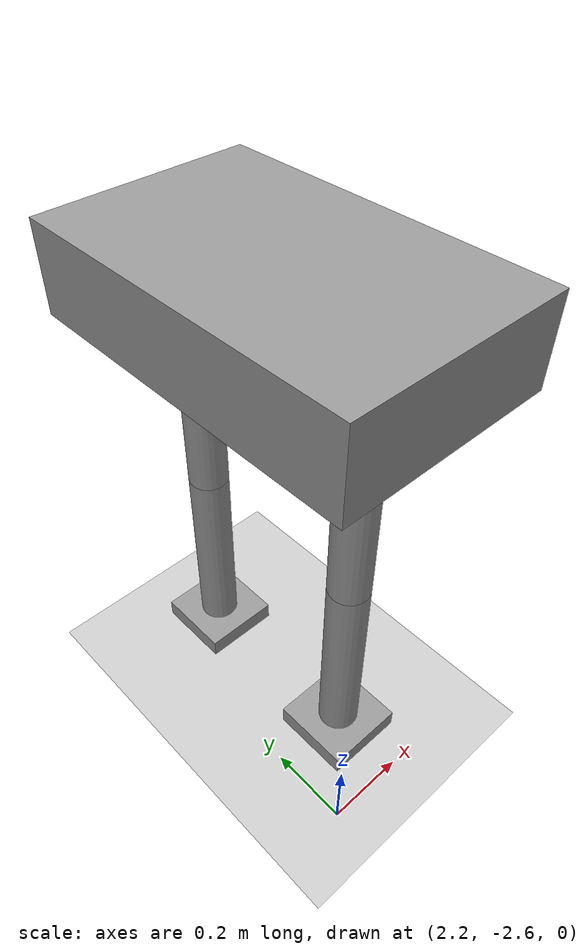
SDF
<sdf version="1.6">
 <world name="default">
  <model name="ground_plane">
   <static>1</static>
   <link name="link">
    <collision name="collision">
     <geometry><plane><normal>0 0 1</normal><size>100 100</size></plane></geometry>
     <surface><friction><ode><mu>100</mu><mu2>50</mu2></ode></friction></surface>
    </collision>
    <visual name="visual">
     <cast_shadows>0</cast_shadows>
     <geometry><plane><normal>0 0 1</normal><size>100 100</size></plane></geometry>
     <material>
      <script><uri>file://media/materials/scripts/gazebo.material</uri><name>Gazebo/Grey</name></script>
     </material>
    </visual>
   </link>
  </model>
  <model name="HumanoidRobot_0">
   <link name="link_0_clone">
    <pose>-0.198443 -0.127142 -0.1375 0 -0 0</pose>
    <inertial>
     <mass>1</mass>
     <inertia>
      <ixx>0.166667</ixx>
      <ixy>0</ixy>
      <ixz>0</ixz>
      <iyy>0.166667</iyy>
      <iyz>0</iyz>
      <izz>0.166667</izz>
     </inertia>
    </inertial>
    <visual name="visual">
     <geometry><box><size>0.2 0.2 0.05</size></box></geometry>
     <material>
      <lighting>1</lighting>
      <script><uri>file://media/materials/scripts/gazebo.material</uri><name>Gazebo/Grey</name></script>
      <shader type="pixel"><normal_map>__default__</normal_map></shader>
      <ambient>0.3 0.3 0.3 1</ambient>
      <diffuse>0.7 0.7 0.7 1</diffuse>
      <specular>0.01 0.01 0.01 1</specular>
      <emissive>0 0 0 1</emissive>
     </material>
    </visual>
    <collision name="collision">
     <geometry><box><size>0.2 0.2 0.05</size></box></geometry>
     <surface>
      <friction>
       <ode><mu>1</mu><mu2>1</mu2><fdir1>0 0 0</fdir1><slip1>0</slip1><slip2>0</slip2></ode>
       <torsional>
        <coefficient>1</coefficient>
        <patch_radius>0</patch_radius>
        <surface_radius>0</surface_radius>
        <use_patch_radius>1</use_patch_radius>
        <ode><slip>0</slip></ode>
       </torsional>
      </friction>
      <bounce><restitution_coefficient>0</restitution_coefficient><threshold>1e+06</threshold></bounce>
      <contact>
       <collide_without_contact>0</collide_without_contact>
       <collide_without_contact_bitmask>1</collide_without_contact_bitmask>
       <collide_bitmask>1</collide_bitmask>
       <ode>
        <soft_cfm>0</soft_cfm>
        <soft_erp>0.2</soft_erp>
        <kp>1e+13</kp>
        <kd>1</kd>
        <max_vel>0.01</max_vel>
        <min_depth>0</min_depth>
       </ode>
       <bullet>
        <split_impulse>1</split_impulse>
        <split_impulse_penetration_threshold>-0.01</split_impulse_penetration_threshold>
        <soft_cfm>0</soft_cfm>
        <soft_erp>0.2</soft_erp>
        <kp>1e+13</kp>
        <kd>1</kd>
       </bullet>
      </contact>
     </surface>
    </collision>
   </link>
   <link name="link_0_clone_clone">
    <pose>-0.198527 0.351681 -0.137499 0 -0 0</pose>
    <inertial>
     <mass>1</mass>
     <inertia>
      <ixx>0.166667</ixx>
      <ixy>0</ixy>
      <ixz>0</ixz>
      <iyy>0.166667</iyy>
      <iyz>0</iyz>
      <izz>0.166667</izz>
     </inertia>
    </inertial>
    <visual name="visual">
     <geometry><box><size>0.2 0.2 0.05</size></box></geometry>
     <material>
      <lighting>1</lighting>
      <script><uri>file://media/materials/scripts/gazebo.material</uri><name>Gazebo/Grey</name></script>
      <shader type="pixel"><normal_map>__default__</normal_map></shader>
      <ambient>0.3 0.3 0.3 1</ambient>
      <diffuse>0.7 0.7 0.7 1</diffuse>
      <specular>0.01 0.01 0.01 1</specular>
      <emissive>0 0 0 1</emissive>
     </material>
    </visual>
    <collision name="collision">
     <geometry><box><size>0.2 0.2 0.05</size></box></geometry>
     <surface>
      <friction>
       <ode><mu>1</mu><mu2>1</mu2><fdir1>0 0 0</fdir1><slip1>0</slip1><slip2>0</slip2></ode>
       <torsional>
        <coefficient>1</coefficient>
        <patch_radius>0</patch_radius>
        <surface_radius>0</surface_radius>
        <use_patch_radius>1</use_patch_radius>
        <ode><slip>0</slip></ode>
       </torsional>
      </friction>
      <bounce><restitution_coefficient>0</restitution_coefficient><threshold>1e+06</threshold></bounce>
      <contact>
       <collide_without_contact>0</collide_without_contact>
       <collide_without_contact_bitmask>1</collide_without_contact_bitmask>
       <collide_bitmask>1</collide_bitmask>
       <ode>
        <soft_cfm>0</soft_cfm>
        <soft_erp>0.2</soft_erp>
        <kp>1e+13</kp>
        <kd>1</kd>
        <max_vel>0.01</max_vel>
        <min_depth>0</min_depth>
       </ode>
       <bullet>
        <split_impulse>1</split_impulse>
        <split_impulse_penetration_threshold>-0.01</split_impulse_penetration_threshold>
        <soft_cfm>0</soft_cfm>
        <soft_erp>0.2</soft_erp>
        <kp>1e+13</kp>
        <kd>1</kd>
       </bullet>
      </contact>
     </surface>
    </collision>
   </link>
   <link name="link_1_clone">
    <pose>-0.19848 0.086402 0.987501 0 2e-06 0.000352</pose>
    <inertial>
     <mass>1</mass>
     <inertia>
      <ixx>0.166667</ixx>
      <ixy>0</ixy>
      <ixz>0</ixz>
      <iyy>0.166667</iyy>
      <iyz>0</iyz>
      <izz>0.166667</izz>
     </inertia>
    </inertial>
    <visual name="visual">
     <geometry><box><size>0.5 0.8 0.2</size></box></geometry>
     <material>
      <lighting>1</lighting>
      <script><uri>file://media/materials/scripts/gazebo.material</uri><name>Gazebo/Grey</name></script>
      <shader type="pixel"><normal_map>__default__</normal_map></shader>
      <ambient>0.3 0.3 0.3 1</ambient>
      <diffuse>0.7 0.7 0.7 1</diffuse>
      <specular>0.01 0.01 0.01 1</specular>
      <emissive>0 0 0 1</emissive>
     </material>
    </visual>
    <collision name="collision">
     <geometry><box><size>0.5 0.8 0.2</size></box></geometry>
     <surface>
      <friction>
       <ode><mu>1</mu><mu2>1</mu2><fdir1>0 0 0</fdir1><slip1>0</slip1><slip2>0</slip2></ode>
       <torsional>
        <coefficient>1</coefficient>
        <patch_radius>0</patch_radius>
        <surface_radius>0</surface_radius>
        <use_patch_radius>1</use_patch_radius>
        <ode><slip>0</slip></ode>
       </torsional>
      </friction>
      <bounce><restitution_coefficient>0</restitution_coefficient><threshold>1e+06</threshold></bounce>
      <contact>
       <collide_without_contact>0</collide_without_contact>
       <collide_without_contact_bitmask>1</collide_without_contact_bitmask>
       <collide_bitmask>1</collide_bitmask>
       <ode>
        <soft_cfm>0</soft_cfm>
        <soft_erp>0.2</soft_erp>
        <kp>1e+13</kp>
        <kd>1</kd>
        <max_vel>0.01</max_vel>
        <min_depth>0</min_depth>
       </ode>
       <bullet>
        <split_impulse>1</split_impulse>
        <split_impulse_penetration_threshold>-0.01</split_impulse_penetration_threshold>
        <soft_cfm>0</soft_cfm>
        <soft_erp>0.2</soft_erp>
        <kp>1e+13</kp>
        <kd>1</kd>
       </bullet>
      </contact>
     </surface>
    </collision>
   </link>
   <link name="link_2_clone_clone">
    <pose>-0.198527 0.351681 0.137501 0 -0 0</pose>
    <inertial>
     <mass>1</mass>
     <inertia><ixx>0.145833</ixx><ixy>0</ixy><ixz>0</ixz><iyy>0.145833</iyy><iyz>0</iyz><izz>0.125</izz></inertia>
    </inertial>
    <visual name="visual">
     <geometry><cylinder><radius>0.05</radius><length>0.5</length></cylinder></geometry>
     <material>
      <lighting>1</lighting>
      <script><uri>file://media/materials/scripts/gazebo.material</uri><name>Gazebo/Grey</name></script>
      <shader type="pixel"><normal_map>__default__</normal_map></shader>
      <ambient>0.3 0.3 0.3 1</ambient>
      <diffuse>0.7 0.7 0.7 1</diffuse>
      <specular>0.01 0.01 0.01 1</specular>
      <emissive>0 0 0 1</emissive>
     </material>
    </visual>
    <collision name="collision">
     <geometry><cylinder><radius>0.05</radius><length>0.5</length></cylinder></geometry>
     <surface>
      <friction>
       <ode><mu>1</mu><mu2>1</mu2><fdir1>0 0 0</fdir1><slip1>0</slip1><slip2>0</slip2></ode>
       <torsional>
        <coefficient>1</coefficient>
        <patch_radius>0</patch_radius>
        <surface_radius>0</surface_radius>
        <use_patch_radius>1</use_patch_radius>
        <ode><slip>0</slip></ode>
       </torsional>
      </friction>
      <bounce><restitution_coefficient>0</restitution_coefficient><threshold>1e+06</threshold></bounce>
      <contact>
       <collide_without_contact>0</collide_without_contact>
       <collide_without_contact_bitmask>1</collide_without_contact_bitmask>
       <collide_bitmask>1</collide_bitmask>
       <ode>
        <soft_cfm>0</soft_cfm>
        <soft_erp>0.2</soft_erp>
        <kp>1e+13</kp>
        <kd>1</kd>
        <max_vel>0.01</max_vel>
        <min_depth>0</min_depth>
       </ode>
       <bullet>
        <split_impulse>1</split_impulse>
        <split_impulse_penetration_threshold>-0.01</split_impulse_penetration_threshold>
        <soft_cfm>0</soft_cfm>
        <soft_erp>0.2</soft_erp>
        <kp>1e+13</kp>
        <kd>1</kd>
       </bullet>
      </contact>
     </surface>
    </collision>
   </link>
   <link name="link_2_clone_clone_0">
    <pose>-0.198442 -0.128015 0.637501 -0 1e-06 0.000176</pose>
    <inertial>
     <mass>1</mass>
     <inertia><ixx>0.145833</ixx><ixy>0</ixy><ixz>0</ixz><iyy>0.145833</iyy><iyz>0</iyz><izz>0.125</izz></inertia>
    </inertial>
    <visual name="visual">
     <geometry><cylinder><radius>0.05</radius><length>0.5</length></cylinder></geometry>
     <material>
      <lighting>1</lighting>
      <script><uri>file://media/materials/scripts/gazebo.material</uri><name>Gazebo/Grey</name></script>
      <shader type="pixel"><normal_map>__default__</normal_map></shader>
      <ambient>0.3 0.3 0.3 1</ambient>
      <diffuse>0.7 0.7 0.7 1</diffuse>
      <specular>0.01 0.01 0.01 1</specular>
      <emissive>0 0 0 1</emissive>
     </material>
    </visual>
    <collision name="collision">
     <geometry><cylinder><radius>0.05</radius><length>0.5</length></cylinder></geometry>
     <surface>
      <friction>
       <ode><mu>1</mu><mu2>1</mu2><fdir1>0 0 0</fdir1><slip1>0</slip1><slip2>0</slip2></ode>
       <torsional>
        <coefficient>1</coefficient>
        <patch_radius>0</patch_radius>
        <surface_radius>0</surface_radius>
        <use_patch_radius>1</use_patch_radius>
        <ode><slip>0</slip></ode>
       </torsional>
      </friction>
      <bounce><restitution_coefficient>0</restitution_coefficient><threshold>1e+06</threshold></bounce>
      <contact>
       <collide_without_contact>0</collide_without_contact>
       <collide_without_contact_bitmask>1</collide_without_contact_bitmask>
       <collide_bitmask>1</collide_bitmask>
       <ode>
        <soft_cfm>0</soft_cfm>
        <soft_erp>0.2</soft_erp>
        <kp>1e+13</kp>
        <kd>1</kd>
        <max_vel>0.01</max_vel>
        <min_depth>0</min_depth>
       </ode>
       <bullet>
        <split_impulse>1</split_impulse>
        <split_impulse_penetration_threshold>-0.01</split_impulse_penetration_threshold>
        <soft_cfm>0</soft_cfm>
        <soft_erp>0.2</soft_erp>
        <kp>1e+13</kp>
        <kd>1</kd>
       </bullet>
      </contact>
     </surface>
    </collision>
   </link>
   <link name="link_2_clone_clone_0_clone">
    <pose>-0.198526 0.351681 0.637501 0 2e-06 0.000352</pose>
    <inertial>
     <mass>1</mass>
     <inertia><ixx>0.145833</ixx><ixy>0</ixy><ixz>0</ixz><iyy>0.145833</iyy><iyz>0</iyz><izz>0.125</izz></inertia>
    </inertial>
    <visual name="visual">
     <geometry><cylinder><radius>0.05</radius><length>0.5</length></cylinder></geometry>
     <material>
      <lighting>1</lighting>
      <script><uri>file://media/materials/scripts/gazebo.material</uri><name>Gazebo/Grey</name></script>
      <shader type="pixel"><normal_map>__default__</normal_map></shader>
      <ambient>0.3 0.3 0.3 1</ambient>
      <diffuse>0.7 0.7 0.7 1</diffuse>
      <specular>0.01 0.01 0.01 1</specular>
      <emissive>0 0 0 1</emissive>
     </material>
    </visual>
    <collision name="collision">
     <geometry><cylinder><radius>0.05</radius><length>0.5</length></cylinder></geometry>
     <surface>
      <friction>
       <ode><mu>1</mu><mu2>1</mu2><fdir1>0 0 0</fdir1><slip1>0</slip1><slip2>0</slip2></ode>
       <torsional>
        <coefficient>1</coefficient>
        <patch_radius>0</patch_radius>
        <surface_radius>0</surface_radius>
        <use_patch_radius>1</use_patch_radius>
        <ode><slip>0</slip></ode>
       </torsional>
      </friction>
      <bounce><restitution_coefficient>0</restitution_coefficient><threshold>1e+06</threshold></bounce>
      <contact>
       <collide_without_contact>0</collide_without_contact>
       <collide_without_contact_bitmask>1</collide_without_contact_bitmask>
       <collide_bitmask>1</collide_bitmask>
       <ode>
        <soft_cfm>0</soft_cfm>
        <soft_erp>0.2</soft_erp>
        <kp>1e+13</kp>
        <kd>1</kd>
        <max_vel>0.01</max_vel>
        <min_depth>0</min_depth>
       </ode>
       <bullet>
        <split_impulse>1</split_impulse>
        <split_impulse_penetration_threshold>-0.01</split_impulse_penetration_threshold>
        <soft_cfm>0</soft_cfm>
        <soft_erp>0.2</soft_erp>
        <kp>1e+13</kp>
        <kd>1</kd>
       </bullet>
      </contact>
     </surface>
    </collision>
   </link>
   <link name="link_2_clone_clone_clone">
    <pose>-0.198443 -0.128015 0.137501 -0 1e-06 0.000176</pose>
    <inertial>
     <mass>1</mass>
     <inertia><ixx>0.145833</ixx><ixy>0</ixy><ixz>0</ixz><iyy>0.145833</iyy><iyz>0</iyz><izz>0.125</izz></inertia>
    </inertial>
    <visual name="visual">
     <geometry><cylinder><radius>0.05</radius><length>0.5</length></cylinder></geometry>
     <material>
      <lighting>1</lighting>
      <script><uri>file://media/materials/scripts/gazebo.material</uri><name>Gazebo/Grey</name></script>
      <shader type="pixel"><normal_map>__default__</normal_map></shader>
      <ambient>0.3 0.3 0.3 1</ambient>
      <diffuse>0.7 0.7 0.7 1</diffuse>
      <specular>0.01 0.01 0.01 1</specular>
      <emissive>0 0 0 1</emissive>
     </material>
    </visual>
    <collision name="collision">
     <geometry><cylinder><radius>0.05</radius><length>0.5</length></cylinder></geometry>
     <surface>
      <friction>
       <ode><mu>1</mu><mu2>1</mu2><fdir1>0 0 0</fdir1><slip1>0</slip1><slip2>0</slip2></ode>
       <torsional>
        <coefficient>1</coefficient>
        <patch_radius>0</patch_radius>
        <surface_radius>0</surface_radius>
        <use_patch_radius>1</use_patch_radius>
        <ode><slip>0</slip></ode>
       </torsional>
      </friction>
      <bounce><restitution_coefficient>0</restitution_coefficient><threshold>1e+06</threshold></bounce>
      <contact>
       <collide_without_contact>0</collide_without_contact>
       <collide_without_contact_bitmask>1</collide_without_contact_bitmask>
       <collide_bitmask>1</collide_bitmask>
       <ode>
        <soft_cfm>0</soft_cfm>
        <soft_erp>0.2</soft_erp>
        <kp>1e+13</kp>
        <kd>1</kd>
        <max_vel>0.01</max_vel>
        <min_depth>0</min_depth>
       </ode>
       <bullet>
        <split_impulse>1</split_impulse>
        <split_impulse_penetration_threshold>-0.01</split_impulse_penetration_threshold>
        <soft_cfm>0</soft_cfm>
        <soft_erp>0.2</soft_erp>
        <kp>1e+13</kp>
        <kd>1</kd>
       </bullet>
      </contact>
     </surface>
    </collision>
   </link>
   <joint name="link_0_clone_JOINT_3" type="fixed">
    <parent>link_0_clone</parent>
    <child>link_2_clone_clone_clone</child>
    <physics>
     <ode><limit><cfm>0</cfm><erp>0.2</erp></limit><suspension><cfm>0</cfm><erp>0.2</erp></suspension></ode>
    </physics>
   </joint>
   <joint name="link_0_clone_clone_JOINT_2" type="fixed">
    <parent>link_0_clone_clone</parent>
    <child>link_2_clone_clone</child>
    <physics>
     <ode><limit><cfm>0</cfm><erp>0.2</erp></limit><suspension><cfm>0</cfm><erp>0.2</erp></suspension></ode>
    </physics>
   </joint>
   <joint name="link_0_clone_clone_JOINT_3" type="fixed">
    <parent>link_0_clone_clone</parent>
    <child>link_2_clone_clone</child>
    <physics>
     <ode><limit><cfm>0</cfm><erp>0.2</erp></limit><suspension><cfm>0</cfm><erp>0.2</erp></suspension></ode>
    </physics>
   </joint>
   <joint name="link_2_clone_clone_0_JOINT_10" type="fixed">
    <parent>link_2_clone_clone_0</parent>
    <child>link_1_clone</child>
    <physics>
     <ode><limit><cfm>0</cfm><erp>0.2</erp></limit><suspension><cfm>0</cfm><erp>0.2</erp></suspension></ode>
    </physics>
   </joint>
   <joint name="link_2_clone_clone_0_clone_JOINT_8" type="fixed">
    <parent>link_2_clone_clone_0_clone</parent>
    <child>link_1_clone</child>
    <physics>
     <ode><limit><cfm>0</cfm><erp>0.2</erp></limit><suspension><cfm>0</cfm><erp>0.2</erp></suspension></ode>
    </physics>
   </joint>
   <joint name="link_2_clone_clone_JOINT_6" type="fixed">
    <parent>link_2_clone_clone</parent>
    <child>link_2_clone_clone_0_clone</child>
    <physics>
     <ode><limit><cfm>0</cfm><erp>0.2</erp></limit><suspension><cfm>0</cfm><erp>0.2</erp></suspension></ode>
    </physics>
   </joint>
   <joint name="link_2_clone_clone_clone_JOINT_5" type="fixed">
    <parent>link_2_clone_clone_clone</parent>
    <child>link_2_clone_clone_0</child>
    <physics>
     <ode><limit><cfm>0</cfm><erp>0.2</erp></limit><suspension><cfm>0</cfm><erp>0.2</erp></suspension></ode>
    </physics>
   </joint>
   <static>0</static>
   <pose>2.57732 -2.29537 0.1625 0 -1e-06 -0.00011</pose>
  </model>
 </world>
</sdf>
